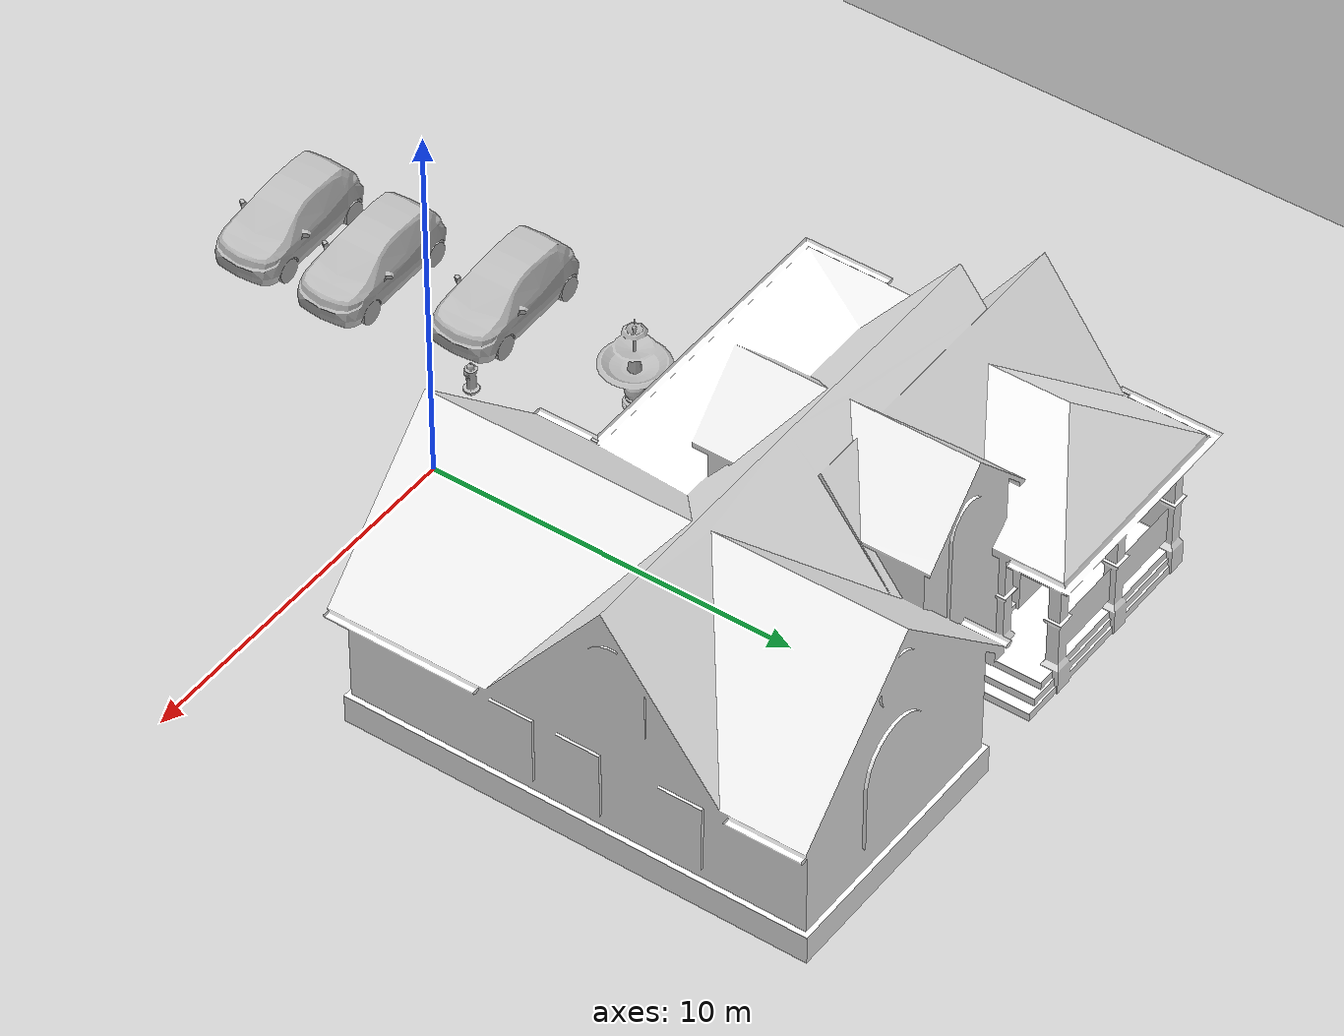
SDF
<sdf version="1.7">
 <world name="default">
  <light name="sun" type="directional">
   <pose>0 0 10 0 -0 0</pose>
   <diffuse>0.8 0.8 0.8 1</diffuse>
   <specular>0.2 0.2 0.2 1</specular>
   <attenuation>
    <range>1000</range>
    <constant>0.9</constant>
    <linear>0.01</linear>
    <quadratic>0.001</quadratic>
   </attenuation>
   <direction>-0.5 0.1 -0.9</direction>
   <spot><inner_angle>0</inner_angle><outer_angle>0</outer_angle><falloff>0</falloff></spot>
  </light>
  <model name="ground_plane">
   <static>1</static>
   <link name="link">
    <collision name="collision">
     <geometry><plane><normal>0 0 1</normal><size>100 100</size></plane></geometry>
     <surface><friction><ode><mu>100</mu><mu2>50</mu2></ode></friction></surface>
    </collision>
    <visual name="visual">
     <cast_shadows>0</cast_shadows>
     <geometry><plane><normal>0 0 1</normal><size>100 100</size></plane></geometry>
     <material>
      <script><uri>file://media/materials/scripts/gazebo.material</uri><name>Gazebo/Grey</name></script>
     </material>
    </visual>
   </link>
  </model>
  <gravity>0 0 -9.8</gravity>
  <magnetic_field>6e-06 2.3e-05 -4.2e-05</magnetic_field>
  <atmosphere type="adiabatic"/>
  <physics type="ode">
   <max_step_size>0.001</max_step_size>
   <real_time_factor>1</real_time_factor>
   <real_time_update_rate>1000</real_time_update_rate>
  </physics>
  <scene><ambient>0.4 0.4 0.4 1</ambient><background>0.7 0.7 0.7 1</background><shadows>1</shadows></scene>
  <spherical_coordinates>
   <surface_model>EARTH_WGS84</surface_model>
   <latitude_deg>0</latitude_deg>
   <longitude_deg>0</longitude_deg>
   <elevation>0</elevation>
   <heading_deg>0</heading_deg>
  </spherical_coordinates>
  <model name="fire_hydrant">
   <static>1</static>
   <link name="link">
    <collision name="collision">
     <geometry><mesh><uri>model://fire_hydrant/meshes/fire_hydrant.dae</uri></mesh></geometry>
    </collision>
    <visual name="visual">
     <geometry><mesh><uri>model://fire_hydrant/meshes/fire_hydrant.dae</uri></mesh></geometry>
    </visual>
   </link>
   <pose>-2.57379 -0.839948 0 0 -0 0</pose>
  </model>
  <model name="fountain">
   <static>1</static>
   <link name="link">
    <collision name="collision">
     <geometry><mesh><uri>model://fountain/meshes/fountain.dae</uri></mesh></geometry>
    </collision>
    <visual name="visual">
     <geometry><mesh><uri>model://fountain/meshes/fountain.dae</uri></mesh></geometry>
    </visual>
   </link>
   <pose>-4.48325 2.46824 0 0 -0 0</pose>
  </model>
  <model name="grey_wall">
   <static>1</static>
   <link name="link">
    <pose>0 0 1.4 0 -0 0</pose>
    <collision name="collision"><geometry><box><size>7.5 0.2 2.8</size></box></geometry></collision>
    <visual name="visual">
     <cast_shadows>0</cast_shadows>
     <geometry><box><size>7.5 0.2 2.8</size></box></geometry>
     <material>
      <script>
       <uri>model://grey_wall/materials/scripts</uri>
       <uri>model://grey_wall/materials/textures</uri>
       <name>vrc/grey_wall</name>
      </script>
     </material>
    </visual>
   </link>
   <pose>-4.17496 4.77356 0 0 -0 0</pose>
  </model>
  <model name="hatchback">
   <static>1</static>
   <link name="link">
    <collision name="collision">
     <pose>0 0 0 0 -0 1.5708</pose>
     <geometry>
      <mesh><scale>0.0254 0.0254 0.0254</scale><uri>model://hatchback/meshes/hatchback.obj</uri></mesh>
     </geometry>
    </collision>
    <visual name="visual">
     <pose>0 0 0 0 -0 1.5708</pose>
     <geometry>
      <mesh><scale>0.0254 0.0254 0.0254</scale><uri>model://hatchback/meshes/hatchback.obj</uri></mesh>
     </geometry>
    </visual>
   </link>
   <pose>-5.54577 -1.84251 0 0 -0 0</pose>
  </model>
  <model name="hatchback_red">
   <static>1</static>
   <link name="link">
    <collision name="collision">
     <pose>0 0 0 0 -0 1.5708</pose>
     <geometry>
      <mesh><scale>0.0254 0.0254 0.0254</scale><uri>model://hatchback_red/meshes/hatchback.obj</uri></mesh>
     </geometry>
    </collision>
    <visual name="visual">
     <pose>0 0 0 0 -0 1.5708</pose>
     <geometry>
      <mesh><scale>0.0254 0.0254 0.0254</scale><uri>model://hatchback_red/meshes/hatchback.obj</uri></mesh>
     </geometry>
    </visual>
   </link>
   <pose>-4.69454 -5.12214 0 0 -0 0</pose>
  </model>
  <model name="hatchback_blue">
   <static>1</static>
   <link name="link">
    <collision name="collision">
     <pose>0 0 0 0 -0 1.5708</pose>
     <geometry>
      <mesh><scale>0.0254 0.0254 0.0254</scale><uri>model://hatchback_blue/meshes/hatchback.obj</uri></mesh>
     </geometry>
    </collision>
    <visual name="visual">
     <pose>0 0 0 0 -0 1.5708</pose>
     <geometry>
      <mesh><scale>0.0254 0.0254 0.0254</scale><uri>model://hatchback_blue/meshes/hatchback.obj</uri></mesh>
     </geometry>
    </visual>
   </link>
   <pose>-4.72324 -7.61284 0 0 -0 0</pose>
  </model>
  <model name="House 1">
   <static>1</static>
   <link name="link">
    <collision name="collision">
     <geometry><mesh><uri>model://house_1/meshes/house_1.dae</uri><scale>1.5 1.5 1.5</scale></mesh></geometry>
    </collision>
    <visual name="visual">
     <geometry><mesh><uri>model://house_1/meshes/house_1.dae</uri><scale>1.5 1.5 1.5</scale></mesh></geometry>
     <material>
      <script>
       <uri>model://house_1/materials/scripts</uri>
       <uri>model://house_1/materials/textures</uri>
       <name>House_1/Diffuse</name>
      </script>
      <shader type="normal_map_tangent_space"><normal_map>House_1_Normal.png</normal_map></shader>
     </material>
    </visual>
   </link>
   <pose>0.232382 9.97548 0 0 -0 0</pose>
  </model>
 </world>
</sdf>
